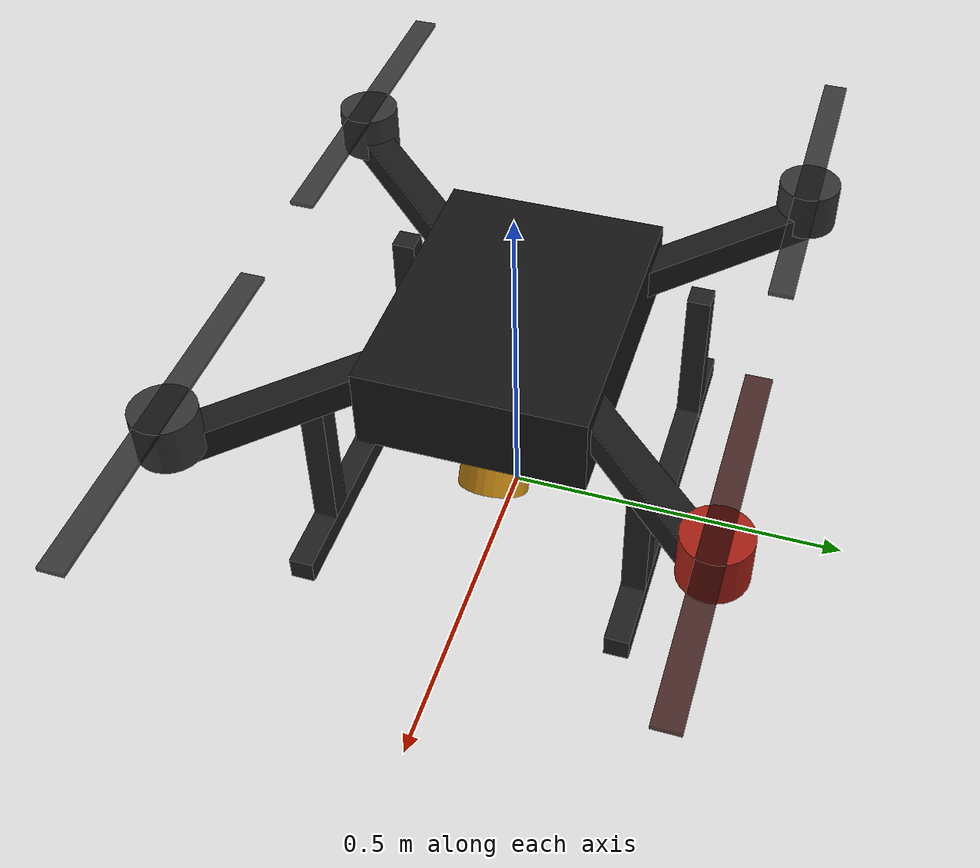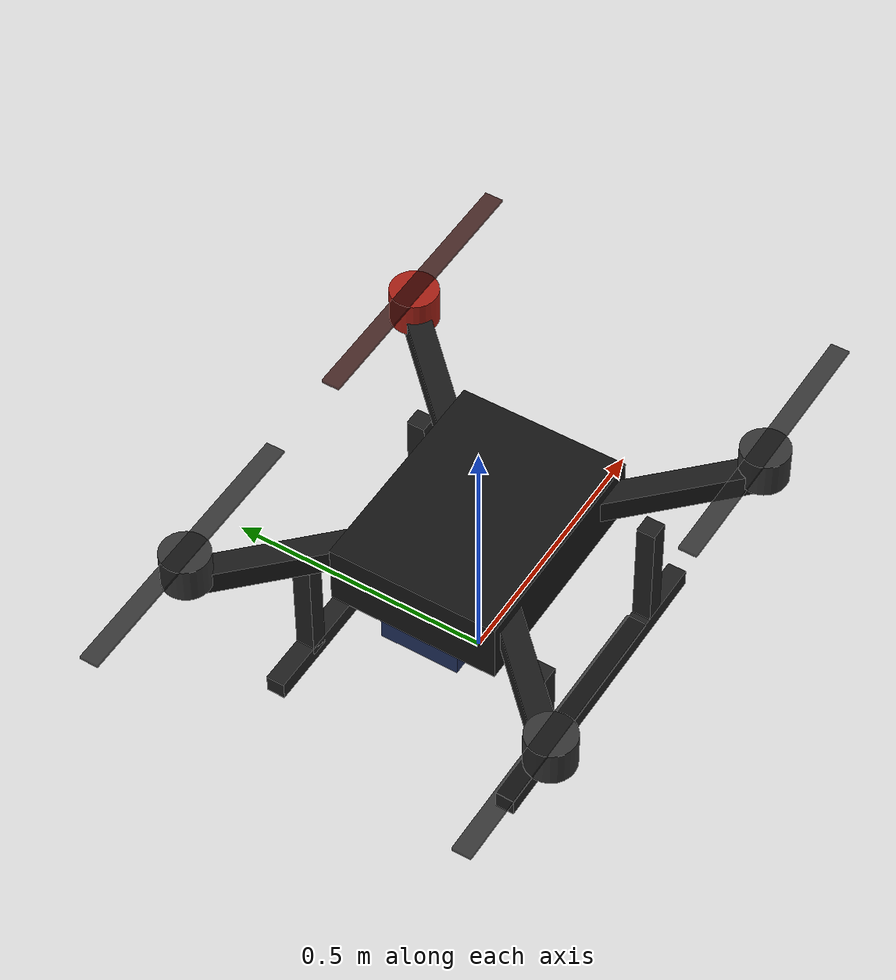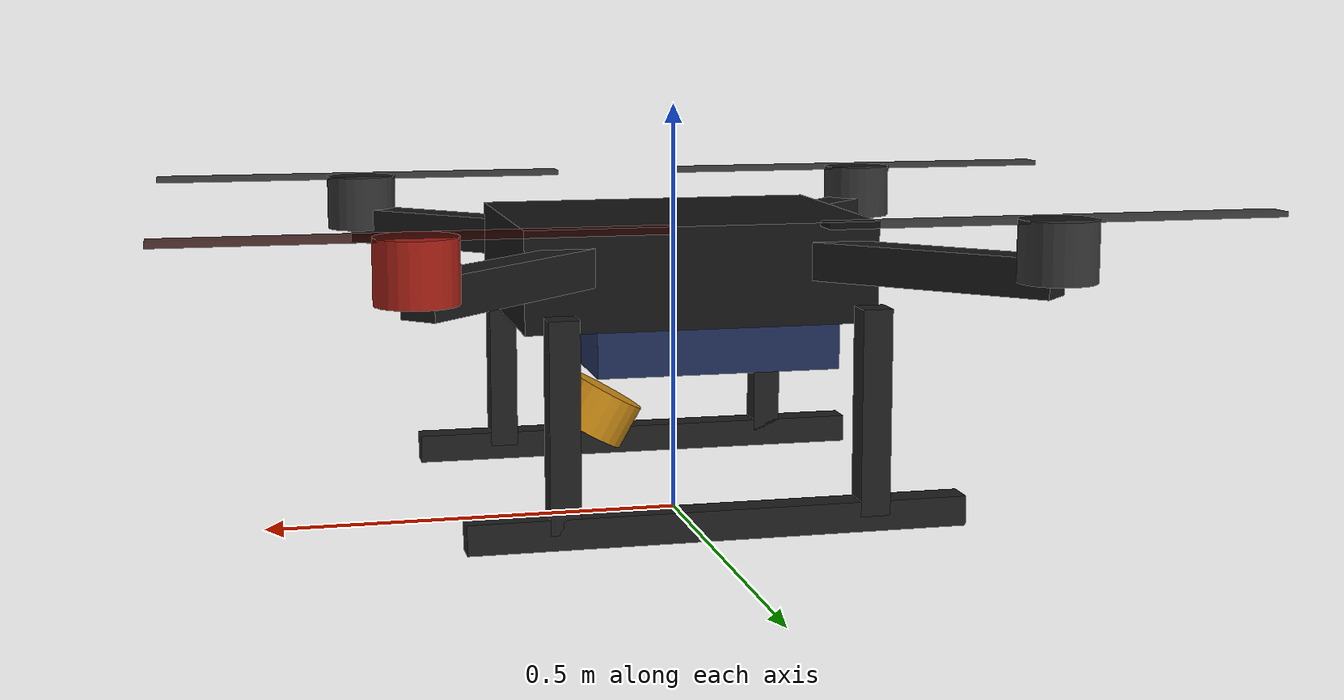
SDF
<?xml version="1.0" encoding="UTF-8"?>
<sdf version="1.9">
  <model name="tl4q990_3d_lidar_2">
    <self_collide>false</self_collide>
    <static>false</static>

    <link name="base_link">
      <!-- PX4 overrides the model pose when spawning, so ground clearance
           belongs on the links rather than on the model element. -->
      <pose>0 0 0.31 0 0 0</pose>
      <inertial>
        <mass>5.80</mass>
        <inertia>
          <ixx>0.55</ixx>
          <iyy>0.55</iyy>
          <izz>1.00</izz>
          <ixy>0</ixy>
          <ixz>0</ixz>
          <iyz>0</iyz>
        </inertia>
      </inertial>
      <gravity>true</gravity>
      <velocity_decay/>

      <visual name="center_plate_visual">
        <geometry><box><size>0.42 0.32 0.12</size></box></geometry>
        <material><diffuse>0.08 0.08 0.08 1</diffuse><specular>0.25 0.25 0.25 1</specular></material>
      </visual>
      <collision name="center_plate_collision">
        <geometry><box><size>0.42 0.32 0.12</size></box></geometry>
      </collision>

      <visual name="battery_visual">
        <pose>-0.04 0 -0.095 0 0 0</pose>
        <geometry><box><size>0.30 0.15 0.07</size></box></geometry>
        <material><diffuse>0.12 0.18 0.35 1</diffuse></material>
      </visual>

      <!-- Four 0.495 m radial arms forming a Quad-X frame. -->
      <visual name="arm_front_right_visual">
        <pose>0.175 -0.175 0.015 0 0 -0.7853981634</pose>
        <geometry><box><size>0.495 0.045 0.045</size></box></geometry>
        <material><diffuse>0.10 0.10 0.10 1</diffuse></material>
      </visual>
      <collision name="arm_front_right_collision">
        <pose>0.175 -0.175 0.015 0 0 -0.7853981634</pose>
        <geometry><box><size>0.495 0.045 0.045</size></box></geometry>
      </collision>
      <visual name="arm_rear_left_visual">
        <pose>-0.175 0.175 0.015 0 0 -0.7853981634</pose>
        <geometry><box><size>0.495 0.045 0.045</size></box></geometry>
        <material><diffuse>0.10 0.10 0.10 1</diffuse></material>
      </visual>
      <collision name="arm_rear_left_collision">
        <pose>-0.175 0.175 0.015 0 0 -0.7853981634</pose>
        <geometry><box><size>0.495 0.045 0.045</size></box></geometry>
      </collision>
      <visual name="arm_front_left_visual">
        <pose>0.175 0.175 0.015 0 0 0.7853981634</pose>
        <geometry><box><size>0.495 0.045 0.045</size></box></geometry>
        <material><diffuse>0.10 0.10 0.10 1</diffuse></material>
      </visual>
      <collision name="arm_front_left_collision">
        <pose>0.175 0.175 0.015 0 0 0.7853981634</pose>
        <geometry><box><size>0.495 0.045 0.045</size></box></geometry>
      </collision>
      <visual name="arm_rear_right_visual">
        <pose>-0.175 -0.175 0.015 0 0 0.7853981634</pose>
        <geometry><box><size>0.495 0.045 0.045</size></box></geometry>
        <material><diffuse>0.10 0.10 0.10 1</diffuse></material>
      </visual>
      <collision name="arm_rear_right_collision">
        <pose>-0.175 -0.175 0.015 0 0 0.7853981634</pose>
        <geometry><box><size>0.495 0.045 0.045</size></box></geometry>
      </collision>

      <!-- Simple landing gear; lowest point is approximately model z=0. -->
      <visual name="skid_left_visual">
        <pose>0 0.23 -0.27 0 0 0</pose>
        <geometry><box><size>0.58 0.035 0.035</size></box></geometry>
        <material><diffuse>0.12 0.12 0.12 1</diffuse></material>
      </visual>
      <collision name="skid_left_collision">
        <pose>0 0.23 -0.27 0 0 0</pose>
        <geometry><box><size>0.58 0.035 0.035</size></box></geometry>
      </collision>
      <visual name="skid_right_visual">
        <pose>0 -0.23 -0.27 0 0 0</pose>
        <geometry><box><size>0.58 0.035 0.035</size></box></geometry>
        <material><diffuse>0.12 0.12 0.12 1</diffuse></material>
      </visual>
      <collision name="skid_right_collision">
        <pose>0 -0.23 -0.27 0 0 0</pose>
        <geometry><box><size>0.58 0.035 0.035</size></box></geometry>
      </collision>
      <visual name="gear_front_left_visual">
        <pose>0.18 0.23 -0.15 0 0 0</pose>
        <geometry><box><size>0.035 0.035 0.24</size></box></geometry>
        <material><diffuse>0.12 0.12 0.12 1</diffuse></material>
      </visual>
      <visual name="gear_rear_left_visual">
        <pose>-0.18 0.23 -0.15 0 0 0</pose>
        <geometry><box><size>0.035 0.035 0.24</size></box></geometry>
        <material><diffuse>0.12 0.12 0.12 1</diffuse></material>
      </visual>
      <visual name="gear_front_right_visual">
        <pose>0.18 -0.23 -0.15 0 0 0</pose>
        <geometry><box><size>0.035 0.035 0.24</size></box></geometry>
        <material><diffuse>0.12 0.12 0.12 1</diffuse></material>
      </visual>
      <visual name="gear_rear_right_visual">
        <pose>-0.18 -0.23 -0.15 0 0 0</pose>
        <geometry><box><size>0.035 0.035 0.24</size></box></geometry>
        <material><diffuse>0.12 0.12 0.12 1</diffuse></material>
      </visual>

      <sensor name="air_pressure_sensor" type="air_pressure">
        <gz_frame_id>base_link</gz_frame_id>
        <always_on>true</always_on>
        <update_rate>50</update_rate>
        <air_pressure><pressure><noise type="gaussian"><mean>0</mean><stddev>3</stddev></noise></pressure></air_pressure>
      </sensor>
      <sensor name="magnetometer_sensor" type="magnetometer">
        <gz_frame_id>base_link</gz_frame_id>
        <always_on>true</always_on>
        <update_rate>100</update_rate>
        <magnetometer>
          <x><noise type="gaussian"><stddev>0.0001</stddev></noise></x>
          <y><noise type="gaussian"><stddev>0.0001</stddev></noise></y>
          <z><noise type="gaussian"><stddev>0.0001</stddev></noise></z>
        </magnetometer>
      </sensor>
      <sensor name="imu_sensor" type="imu">
        <gz_frame_id>base_link</gz_frame_id>
        <always_on>true</always_on>
        <update_rate>250</update_rate>
        <imu>
          <angular_velocity>
            <x><noise type="gaussian"><mean>0</mean><stddev>0.0008726646</stddev></noise></x>
            <y><noise type="gaussian"><mean>0</mean><stddev>0.0008726646</stddev></noise></y>
            <z><noise type="gaussian"><mean>0</mean><stddev>0.0008726646</stddev></noise></z>
          </angular_velocity>
          <linear_acceleration>
            <x><noise type="gaussian"><mean>0</mean><stddev>0.00637</stddev></noise></x>
            <y><noise type="gaussian"><mean>0</mean><stddev>0.00637</stddev></noise></y>
            <z><noise type="gaussian"><mean>0</mean><stddev>0.00686</stddev></noise></z>
          </linear_acceleration>
        </imu>
      </sensor>
      <sensor name="navsat_sensor" type="navsat">
        <gz_frame_id>base_link</gz_frame_id>
        <always_on>true</always_on>
        <update_rate>30</update_rate>
      </sensor>
    </link>

    <!-- Rotor 0: front right, counter-clockwise. -->
    <link name="rotor_0">
      <pose>0.35 -0.35 0.39 0 0 0</pose>
      <gravity>true</gravity>
      <inertial>
        <mass>0.12</mass>
        <inertia><ixx>0.0042</ixx><iyy>0.0042</iyy><izz>0.0084</izz></inertia>
      </inertial>
      <visual name="motor_visual"><pose>0 0 -0.035 0 0 0</pose><geometry><cylinder><radius>0.045</radius><length>0.07</length></cylinder></geometry><material><diffuse>0.20 0.20 0.20 1</diffuse></material></visual>
      <visual name="prop_visual"><geometry><box><size>0.533 0.035 0.006</size></box></geometry><material><diffuse>0.10 0.10 0.10 0.8</diffuse></material></visual>
      <collision name="prop_collision"><geometry><box><size>0.533 0.035 0.006</size></box></geometry></collision>
    </link>
    <joint name="rotor_0_joint" type="revolute">
      <parent>base_link</parent><child>rotor_0</child>
      <axis><xyz>0 0 1</xyz><limit><lower>-1e16</lower><upper>1e16</upper></limit></axis>
    </joint>

    <!-- Rotor 1: rear left, counter-clockwise. -->
    <link name="rotor_1">
      <pose>-0.35 0.35 0.39 0 0 0</pose>
      <gravity>true</gravity>
      <inertial>
        <mass>0.12</mass>
        <inertia><ixx>0.0042</ixx><iyy>0.0042</iyy><izz>0.0084</izz></inertia>
      </inertial>
      <visual name="motor_visual"><pose>0 0 -0.035 0 0 0</pose><geometry><cylinder><radius>0.045</radius><length>0.07</length></cylinder></geometry><material><diffuse>0.20 0.20 0.20 1</diffuse></material></visual>
      <visual name="prop_visual"><geometry><box><size>0.533 0.035 0.006</size></box></geometry><material><diffuse>0.10 0.10 0.10 0.8</diffuse></material></visual>
      <collision name="prop_collision"><geometry><box><size>0.533 0.035 0.006</size></box></geometry></collision>
    </link>
    <joint name="rotor_1_joint" type="revolute">
      <parent>base_link</parent><child>rotor_1</child>
      <axis><xyz>0 0 1</xyz><limit><lower>-1e16</lower><upper>1e16</upper></limit></axis>
    </joint>

    <!-- Rotor 2: front left, clockwise. -->
    <link name="rotor_2">
      <pose>0.35 0.35 0.39 0 0 0</pose>
      <gravity>true</gravity>
      <inertial>
        <mass>0.12</mass>
        <inertia><ixx>0.0042</ixx><iyy>0.0042</iyy><izz>0.0084</izz></inertia>
      </inertial>
      <visual name="motor_visual"><pose>0 0 -0.035 0 0 0</pose><geometry><cylinder><radius>0.045</radius><length>0.07</length></cylinder></geometry><material><diffuse>0.65 0.12 0.08 1</diffuse></material></visual>
      <visual name="prop_visual"><geometry><box><size>0.533 0.035 0.006</size></box></geometry><material><diffuse>0.18 0.03 0.02 0.8</diffuse></material></visual>
      <collision name="prop_collision"><geometry><box><size>0.533 0.035 0.006</size></box></geometry></collision>
    </link>
    <joint name="rotor_2_joint" type="revolute">
      <parent>base_link</parent><child>rotor_2</child>
      <axis><xyz>0 0 1</xyz><limit><lower>-1e16</lower><upper>1e16</upper></limit></axis>
    </joint>

    <!-- Rotor 3: rear right, clockwise. -->
    <link name="rotor_3">
      <pose>-0.35 -0.35 0.39 0 0 0</pose>
      <gravity>true</gravity>
      <inertial>
        <mass>0.12</mass>
        <inertia><ixx>0.0042</ixx><iyy>0.0042</iyy><izz>0.0084</izz></inertia>
      </inertial>
      <visual name="motor_visual"><pose>0 0 -0.035 0 0 0</pose><geometry><cylinder><radius>0.045</radius><length>0.07</length></cylinder></geometry><material><diffuse>0.20 0.20 0.20 1</diffuse></material></visual>
      <visual name="prop_visual"><geometry><box><size>0.533 0.035 0.006</size></box></geometry><material><diffuse>0.10 0.10 0.10 0.8</diffuse></material></visual>
      <collision name="prop_collision"><geometry><box><size>0.533 0.035 0.006</size></box></geometry></collision>
    </link>
    <joint name="rotor_3_joint" type="revolute">
      <parent>base_link</parent><child>rotor_3</child>
      <axis><xyz>0 0 1</xyz><limit><lower>-1e16</lower><upper>1e16</upper></limit></axis>
    </joint>

    <joint name="lidar_joint" type="fixed">
      <parent>base_link</parent><child>lidar_link</child>
      <pose relative_to="base_link">0.1 0 -0.18 0 -3.66 0</pose>
    </joint>
    <link name="lidar_link">
      <pose relative_to="lidar_joint"/>
      <inertial>
        <mass>0.22</mass>
        <inertia><ixx>0.00020</ixx><iyy>0.00020</iyy><izz>0.00029</izz></inertia>
      </inertial>
      <visual name="lidar_visual">
        <geometry><cylinder><radius>0.0508</radius><length>0.055</length></cylinder></geometry>
        <material><diffuse>0.80 0.55 0.08 1</diffuse></material>
      </visual>
      <collision name="lidar_collision">
        <geometry>
          <cylinder>
            <radius>0.0508</radius>
            <length>0.055</length>
          </cylinder></geometry>
        </collision>
      <sensor name="lidar" type="gpu_lidar">
        <always_on>true</always_on>
        <visualize>true</visualize>
        <update_rate>10</update_rate>
        <topic>scan</topic>
        <gz_frame_id>lidar_link</gz_frame_id>
        <lidar>
          <scan>
            <horizontal>
              <samples>360</samples>
              <resolution>1</resolution>
              <min_angle>0</min_angle>
              <max_angle>6.28</max_angle>
            </horizontal>
            <vertical>
              <samples>120</samples>
              <resolution>1</resolution>
              <min_angle>-0.13</min_angle>
              <max_angle>0.96</max_angle>
            </vertical>
          </scan>
          <range>
            <min>0.8</min>
            <max>50</max>
            <resolution>0.015</resolution>
          </range>
          <noise><type>gaussian</type><mean>0</mean><stddev>0.01</stddev></noise>
        </lidar>
      </sensor>
    </link>

    <plugin filename="gz-sim-multicopter-motor-model-system" name="gz::sim::systems::MulticopterMotorModel">
      <jointName>rotor_0_joint</jointName><linkName>rotor_0</linkName><turningDirection>ccw</turningDirection>
      <timeConstantUp>0.04</timeConstantUp><timeConstantDown>0.08</timeConstantDown>
      <maxRotVelocity>800</maxRotVelocity><motorConstant>6.5e-05</motorConstant><momentConstant>0.03</momentConstant>
      <commandSubTopic>command/motor_speed</commandSubTopic><actuator_number>0</actuator_number>
      <rotorDragCoefficient>2.0e-04</rotorDragCoefficient><rollingMomentCoefficient>1e-06</rollingMomentCoefficient>
      <rotorVelocitySlowdownSim>10</rotorVelocitySlowdownSim><motorType>velocity</motorType>
    </plugin>
    <plugin filename="gz-sim-multicopter-motor-model-system" name="gz::sim::systems::MulticopterMotorModel">
      <jointName>rotor_1_joint</jointName><linkName>rotor_1</linkName><turningDirection>ccw</turningDirection>
      <timeConstantUp>0.04</timeConstantUp><timeConstantDown>0.08</timeConstantDown>
      <maxRotVelocity>800</maxRotVelocity><motorConstant>6.5e-05</motorConstant><momentConstant>0.03</momentConstant>
      <commandSubTopic>command/motor_speed</commandSubTopic><actuator_number>1</actuator_number>
      <rotorDragCoefficient>2.0e-04</rotorDragCoefficient><rollingMomentCoefficient>1e-06</rollingMomentCoefficient>
      <rotorVelocitySlowdownSim>10</rotorVelocitySlowdownSim><motorType>velocity</motorType>
    </plugin>
    <plugin filename="gz-sim-multicopter-motor-model-system" name="gz::sim::systems::MulticopterMotorModel">
      <jointName>rotor_2_joint</jointName><linkName>rotor_2</linkName><turningDirection>cw</turningDirection>
      <timeConstantUp>0.04</timeConstantUp><timeConstantDown>0.08</timeConstantDown>
      <maxRotVelocity>800</maxRotVelocity><motorConstant>6.5e-05</motorConstant><momentConstant>0.03</momentConstant>
      <commandSubTopic>command/motor_speed</commandSubTopic><actuator_number>2</actuator_number>
      <rotorDragCoefficient>2.0e-04</rotorDragCoefficient><rollingMomentCoefficient>1e-06</rollingMomentCoefficient>
      <rotorVelocitySlowdownSim>10</rotorVelocitySlowdownSim><motorType>velocity</motorType>
    </plugin>
    <plugin filename="gz-sim-multicopter-motor-model-system" name="gz::sim::systems::MulticopterMotorModel">
      <jointName>rotor_3_joint</jointName><linkName>rotor_3</linkName><turningDirection>cw</turningDirection>
      <timeConstantUp>0.04</timeConstantUp><timeConstantDown>0.08</timeConstantDown>
      <maxRotVelocity>800</maxRotVelocity><motorConstant>6.5e-05</motorConstant><momentConstant>0.03</momentConstant>
      <commandSubTopic>command/motor_speed</commandSubTopic><actuator_number>3</actuator_number>
      <rotorDragCoefficient>2.0e-04</rotorDragCoefficient><rollingMomentCoefficient>1e-06</rollingMomentCoefficient>
      <rotorVelocitySlowdownSim>10</rotorVelocitySlowdownSim><motorType>velocity</motorType>
    </plugin>
  </model>
</sdf>
